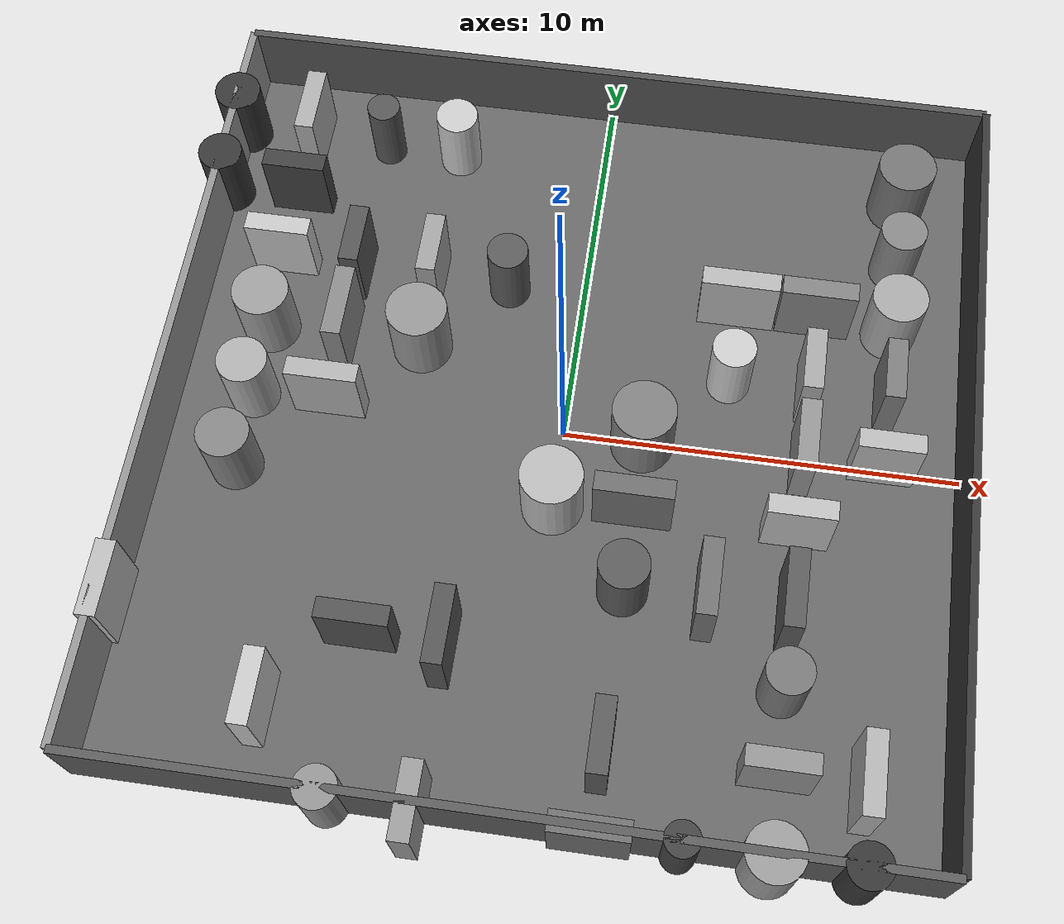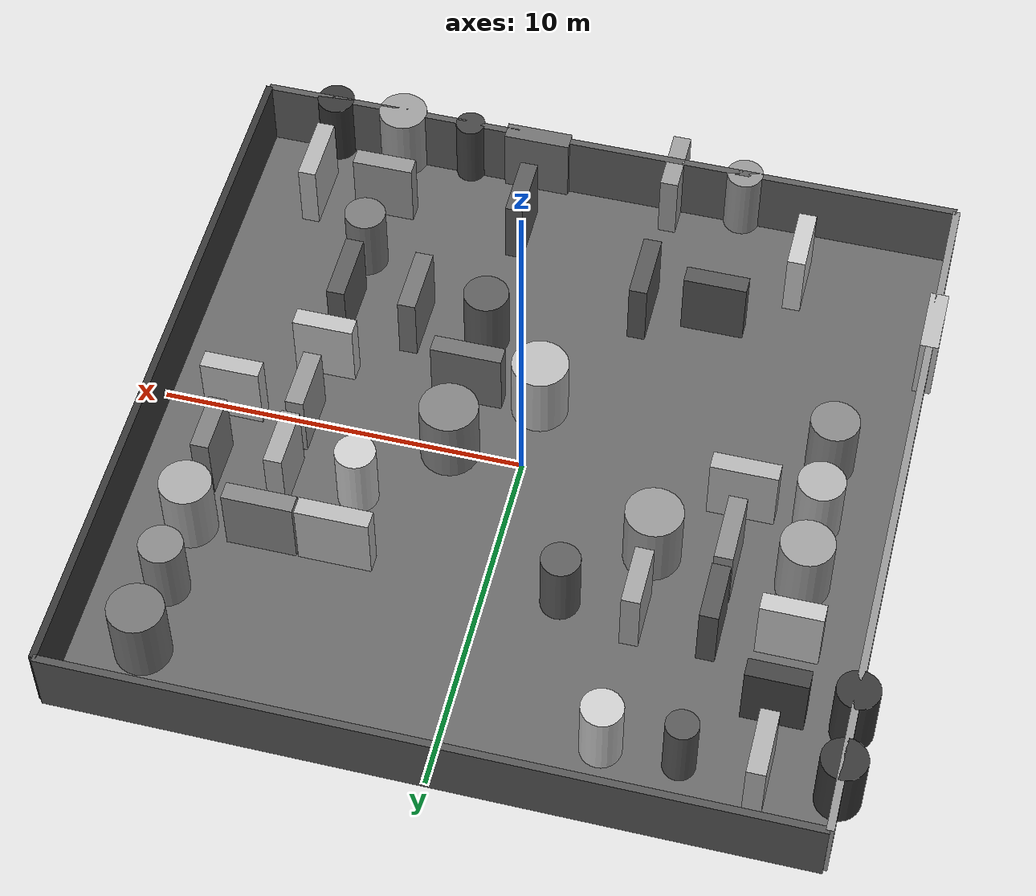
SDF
<sdf version="1.7">
  <world name="default">
    <plugin filename="gz-sim-physics-system" name="gz::sim::systems::Physics" />
    <plugin filename="gz-sim-user-commands-system" name="gz::sim::systems::UserCommands" />
    <plugin filename="gz-sim-scene-broadcaster-system" name="gz::sim::systems::SceneBroadcaster" />
    <plugin filename="gz-sim-sensors-system" name="gz::sim::systems::Sensors">
      <render_engine>ogre2</render_engine>
    </plugin>
    <plugin filename="gz-sim-imu-system" name="gz::sim::systems::Imu" />
    <plugin filename="gz-sim-contact-system" name="gz::sim::systems::Contact" />
    <light name="sun" type="directional">
      <cast_shadows>true</cast_shadows>
      <direction>-0.5 -0.5 -1</direction>
      <diffuse>1 1 1 1</diffuse>
      <specular>0.1 0.1 0.1 1</specular>
      <intensity>1.0</intensity>
    </light>
    <physics type="ode">
      <real_time_update_rate>1000.0</real_time_update_rate>
      <max_step_size>0.001</max_step_size>
      <real_time_factor>1</real_time_factor>
      <ode>
        <solver>
          <type>quick</type>
          <iters>150</iters>
          <precon_iters>0</precon_iters>
          <sor>1.4</sor>
          <use_dynamic_moi_rescaling>1</use_dynamic_moi_rescaling>
        </solver>
        <constraints>
          <cfm>0.00001</cfm>
          <erp>0.2</erp>
          <contact_max_correcting_vel>2000.0</contact_max_correcting_vel>
          <contact_surface_layer>0.01</contact_surface_layer>
        </constraints>
      </ode>
    </physics>
    <model name="ground_plane">
      <static>true</static>
      <link name="link">
        <pose>0.0 0.0 -0.05 0 0 0</pose>
        <visual name="visual">
          <material>
            <ambient>0.40502535502998405 0.40502535502998405 0.40502535502998405 1</ambient>
            <diffuse>0.40502535502998405 0.40502535502998405 0.40502535502998405 1</diffuse>
          </material>
          <geometry>
            <box>
              <size>20.0 20.0 0.1</size>
            </box>
          </geometry>
        </visual>
        <collision name="collision">
          <geometry>
            <box>
              <size>20.0 20.0 0.1</size>
            </box>
          </geometry>
          <surface>
            <friction>
              <ode>
                <mu>100</mu>
                <mu2>50.0</mu2>
                <slip1>0.0</slip1>
                <slip2>0.0</slip2>
              </ode>
            </friction>
            <bounce />
            <contact>
              <ode>
                <kp>10000.0</kp>
                <kd>100.0</kd>
              </ode>
            </contact>
          </surface>
        </collision>
      </link>
    </model>
    <model name="pn_wall_0">
      <static>true</static>
      <link name="link">
        <pose>-10.0 0.0 1.0 0 0 0</pose>
        <visual name="visual">
          <material>
            <ambient>0.5836560790747303 0.5836560790747303 0.5836560790747303 1</ambient>
            <diffuse>0.5836560790747303 0.5836560790747303 0.5836560790747303 1</diffuse>
          </material>
          <geometry>
            <box>
              <size>0.2 20.0 2.0</size>
            </box>
          </geometry>
        </visual>
        <collision name="collision">
          <geometry>
            <box>
              <size>0.2 20.0 2.0</size>
            </box>
          </geometry>
          <surface>
            <friction>
              <ode>
                <mu>100</mu>
                <mu2>50.0</mu2>
                <slip1>0.0</slip1>
                <slip2>0.0</slip2>
              </ode>
            </friction>
            <bounce />
            <contact>
              <ode>
                <kp>10000.0</kp>
                <kd>100.0</kd>
              </ode>
            </contact>
          </surface>
        </collision>
      </link>
    </model>
    <model name="pn_wall_1">
      <static>true</static>
      <link name="link">
        <pose>10.0 0.0 1.0 0 0 0</pose>
        <visual name="visual">
          <material>
            <ambient>0.21500645313360017 0.21500645313360017 0.21500645313360017 1</ambient>
            <diffuse>0.21500645313360017 0.21500645313360017 0.21500645313360017 1</diffuse>
          </material>
          <geometry>
            <box>
              <size>0.2 20.0 2.0</size>
            </box>
          </geometry>
        </visual>
        <collision name="collision">
          <geometry>
            <box>
              <size>0.2 20.0 2.0</size>
            </box>
          </geometry>
          <surface>
            <friction>
              <ode>
                <mu>100</mu>
                <mu2>50.0</mu2>
                <slip1>0.0</slip1>
                <slip2>0.0</slip2>
              </ode>
            </friction>
            <bounce />
            <contact>
              <ode>
                <kp>10000.0</kp>
                <kd>100.0</kd>
              </ode>
            </contact>
          </surface>
        </collision>
      </link>
    </model>
    <model name="pn_wall_2">
      <static>true</static>
      <link name="link">
        <pose>0.0 -10.0 1.0 0 0 0</pose>
        <visual name="visual">
          <material>
            <ambient>0.3650175910214716 0.3650175910214716 0.3650175910214716 1</ambient>
            <diffuse>0.3650175910214716 0.3650175910214716 0.3650175910214716 1</diffuse>
          </material>
          <geometry>
            <box>
              <size>20.0 0.2 2.0</size>
            </box>
          </geometry>
        </visual>
        <collision name="collision">
          <geometry>
            <box>
              <size>20.0 0.2 2.0</size>
            </box>
          </geometry>
          <surface>
            <friction>
              <ode>
                <mu>100</mu>
                <mu2>50.0</mu2>
                <slip1>0.0</slip1>
                <slip2>0.0</slip2>
              </ode>
            </friction>
            <bounce />
            <contact>
              <ode>
                <kp>10000.0</kp>
                <kd>100.0</kd>
              </ode>
            </contact>
          </surface>
        </collision>
      </link>
    </model>
    <model name="pn_wall_3">
      <static>true</static>
      <link name="link">
        <pose>0.0 10.0 1.0 0 0 0</pose>
        <visual name="visual">
          <material>
            <ambient>0.3339264428892937 0.3339264428892937 0.3339264428892937 1</ambient>
            <diffuse>0.3339264428892937 0.3339264428892937 0.3339264428892937 1</diffuse>
          </material>
          <geometry>
            <box>
              <size>20.0 0.2 2.0</size>
            </box>
          </geometry>
        </visual>
        <collision name="collision">
          <geometry>
            <box>
              <size>20.0 0.2 2.0</size>
            </box>
          </geometry>
          <surface>
            <friction>
              <ode>
                <mu>100</mu>
                <mu2>50.0</mu2>
                <slip1>0.0</slip1>
                <slip2>0.0</slip2>
              </ode>
            </friction>
            <bounce />
            <contact>
              <ode>
                <kp>10000.0</kp>
                <kd>100.0</kd>
              </ode>
            </contact>
          </surface>
        </collision>
      </link>
    </model>
    <model name="pn_wall_4">
      <static>true</static>
      <link name="link">
        <pose>-10.0 -6.0 1.0 0 0 0</pose>
        <visual name="visual">
          <material>
            <ambient>0.7353077406229074 0.7353077406229074 0.7353077406229074 1</ambient>
            <diffuse>0.7353077406229074 0.7353077406229074 0.7353077406229074 1</diffuse>
          </material>
          <geometry>
            <box>
              <size>0.5 1.8706797949691645 2.0</size>
            </box>
          </geometry>
        </visual>
        <collision name="collision">
          <geometry>
            <box>
              <size>0.5 1.8706797949691645 2.0</size>
            </box>
          </geometry>
          <surface>
            <friction>
              <ode>
                <mu>100</mu>
                <mu2>50.0</mu2>
                <slip1>0.0</slip1>
                <slip2>0.0</slip2>
              </ode>
            </friction>
            <bounce />
            <contact>
              <ode>
                <kp>10000.0</kp>
                <kd>100.0</kd>
              </ode>
            </contact>
          </surface>
        </collision>
      </link>
    </model>
    <model name="pn_pillar_5">
      <static>true</static>
      <link name="link">
        <pose>-10.0 6.0 1.0 0 0 0</pose>
        <visual name="visual">
          <material>
            <ambient>0.2178783316628422 0.2178783316628422 0.2178783316628422 1</ambient>
            <diffuse>0.2178783316628422 0.2178783316628422 0.2178783316628422 1</diffuse>
          </material>
          <geometry>
            <cylinder>
              <radius>0.5687687278741083</radius>
              <length>2.0</length>
            </cylinder>
          </geometry>
        </visual>
        <collision name="collision">
          <geometry>
            <cylinder>
              <radius>0.5687687278741083</radius>
              <length>2.0</length>
            </cylinder>
          </geometry>
          <surface>
            <friction>
              <ode>
                <mu>100</mu>
                <mu2>50.0</mu2>
                <slip1>0.0</slip1>
                <slip2>0.0</slip2>
              </ode>
            </friction>
            <bounce />
            <contact>
              <ode>
                <kp>10000.0</kp>
                <kd>100.0</kd>
              </ode>
            </contact>
          </surface>
        </collision>
      </link>
    </model>
    <model name="pn_pillar_6">
      <static>true</static>
      <link name="link">
        <pose>-10.0 8.0 1.0 0 0 0</pose>
        <visual name="visual">
          <material>
            <ambient>0.21592158181031817 0.21592158181031817 0.21592158181031817 1</ambient>
            <diffuse>0.21592158181031817 0.21592158181031817 0.21592158181031817 1</diffuse>
          </material>
          <geometry>
            <cylinder>
              <radius>0.602142115241345</radius>
              <length>2.0</length>
            </cylinder>
          </geometry>
        </visual>
        <collision name="collision">
          <geometry>
            <cylinder>
              <radius>0.602142115241345</radius>
              <length>2.0</length>
            </cylinder>
          </geometry>
          <surface>
            <friction>
              <ode>
                <mu>100</mu>
                <mu2>50.0</mu2>
                <slip1>0.0</slip1>
                <slip2>0.0</slip2>
              </ode>
            </friction>
            <bounce />
            <contact>
              <ode>
                <kp>10000.0</kp>
                <kd>100.0</kd>
              </ode>
            </contact>
          </surface>
        </collision>
      </link>
    </model>
    <model name="pn_pillar_7">
      <static>true</static>
      <link name="link">
        <pose>-8.0 -2.0 1.0 0 0 0</pose>
        <visual name="visual">
          <material>
            <ambient>0.52696488836193 0.52696488836193 0.52696488836193 1</ambient>
            <diffuse>0.52696488836193 0.52696488836193 0.52696488836193 1</diffuse>
          </material>
          <geometry>
            <cylinder>
              <radius>0.6599537751118093</radius>
              <length>2.0</length>
            </cylinder>
          </geometry>
        </visual>
        <collision name="collision">
          <geometry>
            <cylinder>
              <radius>0.6599537751118093</radius>
              <length>2.0</length>
            </cylinder>
          </geometry>
          <surface>
            <friction>
              <ode>
                <mu>100</mu>
                <mu2>50.0</mu2>
                <slip1>0.0</slip1>
                <slip2>0.0</slip2>
              </ode>
            </friction>
            <bounce />
            <contact>
              <ode>
                <kp>10000.0</kp>
                <kd>100.0</kd>
              </ode>
            </contact>
          </surface>
        </collision>
      </link>
    </model>
    <model name="pn_pillar_8">
      <static>true</static>
      <link name="link">
        <pose>-8.0 0.0 1.0 0 0 0</pose>
        <visual name="visual">
          <material>
            <ambient>0.6856582740066961 0.6856582740066961 0.6856582740066961 1</ambient>
            <diffuse>0.6856582740066961 0.6856582740066961 0.6856582740066961 1</diffuse>
          </material>
          <geometry>
            <cylinder>
              <radius>0.6357062735503636</radius>
              <length>2.0</length>
            </cylinder>
          </geometry>
        </visual>
        <collision name="collision">
          <geometry>
            <cylinder>
              <radius>0.6357062735503636</radius>
              <length>2.0</length>
            </cylinder>
          </geometry>
          <surface>
            <friction>
              <ode>
                <mu>100</mu>
                <mu2>50.0</mu2>
                <slip1>0.0</slip1>
                <slip2>0.0</slip2>
              </ode>
            </friction>
            <bounce />
            <contact>
              <ode>
                <kp>10000.0</kp>
                <kd>100.0</kd>
              </ode>
            </contact>
          </surface>
        </collision>
      </link>
    </model>
    <model name="pn_pillar_9">
      <static>true</static>
      <link name="link">
        <pose>-8.0 2.0 1.0 0 0 0</pose>
        <visual name="visual">
          <material>
            <ambient>0.6188836369929362 0.6188836369929362 0.6188836369929362 1</ambient>
            <diffuse>0.6188836369929362 0.6188836369929362 0.6188836369929362 1</diffuse>
          </material>
          <geometry>
            <cylinder>
              <radius>0.7223277007331232</radius>
              <length>2.0</length>
            </cylinder>
          </geometry>
        </visual>
        <collision name="collision">
          <geometry>
            <cylinder>
              <radius>0.7223277007331232</radius>
              <length>2.0</length>
            </cylinder>
          </geometry>
          <surface>
            <friction>
              <ode>
                <mu>100</mu>
                <mu2>50.0</mu2>
                <slip1>0.0</slip1>
                <slip2>0.0</slip2>
              </ode>
            </friction>
            <bounce />
            <contact>
              <ode>
                <kp>10000.0</kp>
                <kd>100.0</kd>
              </ode>
            </contact>
          </surface>
        </collision>
      </link>
    </model>
    <model name="pn_wall_10">
      <static>true</static>
      <link name="link">
        <pose>-8.0 4.0 1.0 0 0 0</pose>
        <visual name="visual">
          <material>
            <ambient>0.7743278433240688 0.7743278433240688 0.7743278433240688 1</ambient>
            <diffuse>0.7743278433240688 0.7743278433240688 0.7743278433240688 1</diffuse>
          </material>
          <geometry>
            <box>
              <size>1.6621917999247127 0.5 2.0</size>
            </box>
          </geometry>
        </visual>
        <collision name="collision">
          <geometry>
            <box>
              <size>1.6621917999247127 0.5 2.0</size>
            </box>
          </geometry>
          <surface>
            <friction>
              <ode>
                <mu>100</mu>
                <mu2>50.0</mu2>
                <slip1>0.0</slip1>
                <slip2>0.0</slip2>
              </ode>
            </friction>
            <bounce />
            <contact>
              <ode>
                <kp>10000.0</kp>
                <kd>100.0</kd>
              </ode>
            </contact>
          </surface>
        </collision>
      </link>
    </model>
    <model name="pn_wall_11">
      <static>true</static>
      <link name="link">
        <pose>-8.0 6.0 1.0 0 0 0</pose>
        <visual name="visual">
          <material>
            <ambient>0.2580298261000784 0.2580298261000784 0.2580298261000784 1</ambient>
            <diffuse>0.2580298261000784 0.2580298261000784 0.2580298261000784 1</diffuse>
          </material>
          <geometry>
            <box>
              <size>1.6370983373520593 0.5 2.0</size>
            </box>
          </geometry>
        </visual>
        <collision name="collision">
          <geometry>
            <box>
              <size>1.6370983373520593 0.5 2.0</size>
            </box>
          </geometry>
          <surface>
            <friction>
              <ode>
                <mu>100</mu>
                <mu2>50.0</mu2>
                <slip1>0.0</slip1>
                <slip2>0.0</slip2>
              </ode>
            </friction>
            <bounce />
            <contact>
              <ode>
                <kp>10000.0</kp>
                <kd>100.0</kd>
              </ode>
            </contact>
          </surface>
        </collision>
      </link>
    </model>
    <model name="pn_wall_12">
      <static>true</static>
      <link name="link">
        <pose>-8.0 8.0 1.0 0 0 0</pose>
        <visual name="visual">
          <material>
            <ambient>0.6842769639646282 0.6842769639646282 0.6842769639646282 1</ambient>
            <diffuse>0.6842769639646282 0.6842769639646282 0.6842769639646282 1</diffuse>
          </material>
          <geometry>
            <box>
              <size>0.5 1.8414904125467564 2.0</size>
            </box>
          </geometry>
        </visual>
        <collision name="collision">
          <geometry>
            <box>
              <size>0.5 1.8414904125467564 2.0</size>
            </box>
          </geometry>
          <surface>
            <friction>
              <ode>
                <mu>100</mu>
                <mu2>50.0</mu2>
                <slip1>0.0</slip1>
                <slip2>0.0</slip2>
              </ode>
            </friction>
            <bounce />
            <contact>
              <ode>
                <kp>10000.0</kp>
                <kd>100.0</kd>
              </ode>
            </contact>
          </surface>
        </collision>
      </link>
    </model>
    <model name="pn_wall_13">
      <static>true</static>
      <link name="link">
        <pose>-6.0 -8.0 1.0 0 0 0</pose>
        <visual name="visual">
          <material>
            <ambient>0.7838694583876225 0.7838694583876225 0.7838694583876225 1</ambient>
            <diffuse>0.7838694583876225 0.7838694583876225 0.7838694583876225 1</diffuse>
          </material>
          <geometry>
            <box>
              <size>0.5 1.8144912365818804 2.0</size>
            </box>
          </geometry>
        </visual>
        <collision name="collision">
          <geometry>
            <box>
              <size>0.5 1.8144912365818804 2.0</size>
            </box>
          </geometry>
          <surface>
            <friction>
              <ode>
                <mu>100</mu>
                <mu2>50.0</mu2>
                <slip1>0.0</slip1>
                <slip2>0.0</slip2>
              </ode>
            </friction>
            <bounce />
            <contact>
              <ode>
                <kp>10000.0</kp>
                <kd>100.0</kd>
              </ode>
            </contact>
          </surface>
        </collision>
      </link>
    </model>
    <model name="pn_wall_14">
      <static>true</static>
      <link name="link">
        <pose>-6.0 0.0 1.0 0 0 0</pose>
        <visual name="visual">
          <material>
            <ambient>0.697642798551797 0.697642798551797 0.697642798551797 1</ambient>
            <diffuse>0.697642798551797 0.697642798551797 0.697642798551797 1</diffuse>
          </material>
          <geometry>
            <box>
              <size>1.8208162525092908 0.5 2.0</size>
            </box>
          </geometry>
        </visual>
        <collision name="collision">
          <geometry>
            <box>
              <size>1.8208162525092908 0.5 2.0</size>
            </box>
          </geometry>
          <surface>
            <friction>
              <ode>
                <mu>100</mu>
                <mu2>50.0</mu2>
                <slip1>0.0</slip1>
                <slip2>0.0</slip2>
              </ode>
            </friction>
            <bounce />
            <contact>
              <ode>
                <kp>10000.0</kp>
                <kd>100.0</kd>
              </ode>
            </contact>
          </surface>
        </collision>
      </link>
    </model>
    <model name="pn_wall_15">
      <static>true</static>
      <link name="link">
        <pose>-6.0 2.0 1.0 0 0 0</pose>
        <visual name="visual">
          <material>
            <ambient>0.5464112871540573 0.5464112871540573 0.5464112871540573 1</ambient>
            <diffuse>0.5464112871540573 0.5464112871540573 0.5464112871540573 1</diffuse>
          </material>
          <geometry>
            <box>
              <size>0.5 1.9446827601243108 2.0</size>
            </box>
          </geometry>
        </visual>
        <collision name="collision">
          <geometry>
            <box>
              <size>0.5 1.9446827601243108 2.0</size>
            </box>
          </geometry>
          <surface>
            <friction>
              <ode>
                <mu>100</mu>
                <mu2>50.0</mu2>
                <slip1>0.0</slip1>
                <slip2>0.0</slip2>
              </ode>
            </friction>
            <bounce />
            <contact>
              <ode>
                <kp>10000.0</kp>
                <kd>100.0</kd>
              </ode>
            </contact>
          </surface>
        </collision>
      </link>
    </model>
    <model name="pn_wall_16">
      <static>true</static>
      <link name="link">
        <pose>-6.0 4.0 1.0 0 0 0</pose>
        <visual name="visual">
          <material>
            <ambient>0.3367389653909282 0.3367389653909282 0.3367389653909282 1</ambient>
            <diffuse>0.3367389653909282 0.3367389653909282 0.3367389653909282 1</diffuse>
          </material>
          <geometry>
            <box>
              <size>0.5 1.618329753462265 2.0</size>
            </box>
          </geometry>
        </visual>
        <collision name="collision">
          <geometry>
            <box>
              <size>0.5 1.618329753462265 2.0</size>
            </box>
          </geometry>
          <surface>
            <friction>
              <ode>
                <mu>100</mu>
                <mu2>50.0</mu2>
                <slip1>0.0</slip1>
                <slip2>0.0</slip2>
              </ode>
            </friction>
            <bounce />
            <contact>
              <ode>
                <kp>10000.0</kp>
                <kd>100.0</kd>
              </ode>
            </contact>
          </surface>
        </collision>
      </link>
    </model>
    <model name="pn_pillar_17">
      <static>true</static>
      <link name="link">
        <pose>-6.0 8.0 1.0 0 0 0</pose>
        <visual name="visual">
          <material>
            <ambient>0.3396745318166181 0.3396745318166181 0.3396745318166181 1</ambient>
            <diffuse>0.3396745318166181 0.3396745318166181 0.3396745318166181 1</diffuse>
          </material>
          <geometry>
            <cylinder>
              <radius>0.431916790769451</radius>
              <length>2.0</length>
            </cylinder>
          </geometry>
        </visual>
        <collision name="collision">
          <geometry>
            <cylinder>
              <radius>0.431916790769451</radius>
              <length>2.0</length>
            </cylinder>
          </geometry>
          <surface>
            <friction>
              <ode>
                <mu>100</mu>
                <mu2>50.0</mu2>
                <slip1>0.0</slip1>
                <slip2>0.0</slip2>
              </ode>
            </friction>
            <bounce />
            <contact>
              <ode>
                <kp>10000.0</kp>
                <kd>100.0</kd>
              </ode>
            </contact>
          </surface>
        </collision>
      </link>
    </model>
    <model name="pn_pillar_18">
      <static>true</static>
      <link name="link">
        <pose>-4.0 -10.0 1.0 0 0 0</pose>
        <visual name="visual">
          <material>
            <ambient>0.5814106665586402 0.5814106665586402 0.5814106665586402 1</ambient>
            <diffuse>0.5814106665586402 0.5814106665586402 0.5814106665586402 1</diffuse>
          </material>
          <geometry>
            <cylinder>
              <radius>0.5111894412440369</radius>
              <length>2.0</length>
            </cylinder>
          </geometry>
        </visual>
        <collision name="collision">
          <geometry>
            <cylinder>
              <radius>0.5111894412440369</radius>
              <length>2.0</length>
            </cylinder>
          </geometry>
          <surface>
            <friction>
              <ode>
                <mu>100</mu>
                <mu2>50.0</mu2>
                <slip1>0.0</slip1>
                <slip2>0.0</slip2>
              </ode>
            </friction>
            <bounce />
            <contact>
              <ode>
                <kp>10000.0</kp>
                <kd>100.0</kd>
              </ode>
            </contact>
          </surface>
        </collision>
      </link>
    </model>
    <model name="pn_wall_19">
      <static>true</static>
      <link name="link">
        <pose>-4.0 -6.0 1.0 0 0 0</pose>
        <visual name="visual">
          <material>
            <ambient>0.32570421846289266 0.32570421846289266 0.32570421846289266 1</ambient>
            <diffuse>0.32570421846289266 0.32570421846289266 0.32570421846289266 1</diffuse>
          </material>
          <geometry>
            <box>
              <size>1.7480723868467531 0.5 2.0</size>
            </box>
          </geometry>
        </visual>
        <collision name="collision">
          <geometry>
            <box>
              <size>1.7480723868467531 0.5 2.0</size>
            </box>
          </geometry>
          <surface>
            <friction>
              <ode>
                <mu>100</mu>
                <mu2>50.0</mu2>
                <slip1>0.0</slip1>
                <slip2>0.0</slip2>
              </ode>
            </friction>
            <bounce />
            <contact>
              <ode>
                <kp>10000.0</kp>
                <kd>100.0</kd>
              </ode>
            </contact>
          </surface>
        </collision>
      </link>
    </model>
    <model name="pn_pillar_20">
      <static>true</static>
      <link name="link">
        <pose>-4.0 2.0 1.0 0 0 0</pose>
        <visual name="visual">
          <material>
            <ambient>0.5888212311479561 0.5888212311479561 0.5888212311479561 1</ambient>
            <diffuse>0.5888212311479561 0.5888212311479561 0.5888212311479561 1</diffuse>
          </material>
          <geometry>
            <cylinder>
              <radius>0.7746618350849976</radius>
              <length>2.0</length>
            </cylinder>
          </geometry>
        </visual>
        <collision name="collision">
          <geometry>
            <cylinder>
              <radius>0.7746618350849976</radius>
              <length>2.0</length>
            </cylinder>
          </geometry>
          <surface>
            <friction>
              <ode>
                <mu>100</mu>
                <mu2>50.0</mu2>
                <slip1>0.0</slip1>
                <slip2>0.0</slip2>
              </ode>
            </friction>
            <bounce />
            <contact>
              <ode>
                <kp>10000.0</kp>
                <kd>100.0</kd>
              </ode>
            </contact>
          </surface>
        </collision>
      </link>
    </model>
    <model name="pn_wall_21">
      <static>true</static>
      <link name="link">
        <pose>-4.0 4.0 1.0 0 0 0</pose>
        <visual name="visual">
          <material>
            <ambient>0.6374760787702096 0.6374760787702096 0.6374760787702096 1</ambient>
            <diffuse>0.6374760787702096 0.6374760787702096 0.6374760787702096 1</diffuse>
          </material>
          <geometry>
            <box>
              <size>0.5 1.6684554592792389 2.0</size>
            </box>
          </geometry>
        </visual>
        <collision name="collision">
          <geometry>
            <box>
              <size>0.5 1.6684554592792389 2.0</size>
            </box>
          </geometry>
          <surface>
            <friction>
              <ode>
                <mu>100</mu>
                <mu2>50.0</mu2>
                <slip1>0.0</slip1>
                <slip2>0.0</slip2>
              </ode>
            </friction>
            <bounce />
            <contact>
              <ode>
                <kp>10000.0</kp>
                <kd>100.0</kd>
              </ode>
            </contact>
          </surface>
        </collision>
      </link>
    </model>
    <model name="pn_pillar_22">
      <static>true</static>
      <link name="link">
        <pose>-4.0 8.0 1.0 0 0 0</pose>
        <visual name="visual">
          <material>
            <ambient>0.7937140103819573 0.7937140103819573 0.7937140103819573 1</ambient>
            <diffuse>0.7937140103819573 0.7937140103819573 0.7937140103819573 1</diffuse>
          </material>
          <geometry>
            <cylinder>
              <radius>0.5517821767030592</radius>
              <length>2.0</length>
            </cylinder>
          </geometry>
        </visual>
        <collision name="collision">
          <geometry>
            <cylinder>
              <radius>0.5517821767030592</radius>
              <length>2.0</length>
            </cylinder>
          </geometry>
          <surface>
            <friction>
              <ode>
                <mu>100</mu>
                <mu2>50.0</mu2>
                <slip1>0.0</slip1>
                <slip2>0.0</slip2>
              </ode>
            </friction>
            <bounce />
            <contact>
              <ode>
                <kp>10000.0</kp>
                <kd>100.0</kd>
              </ode>
            </contact>
          </surface>
        </collision>
      </link>
    </model>
    <model name="pn_wall_23">
      <static>true</static>
      <link name="link">
        <pose>-2.0 -10.0 1.0 0 0 0</pose>
        <visual name="visual">
          <material>
            <ambient>0.6107685505939249 0.6107685505939249 0.6107685505939249 1</ambient>
            <diffuse>0.6107685505939249 0.6107685505939249 0.6107685505939249 1</diffuse>
          </material>
          <geometry>
            <box>
              <size>0.5 1.8227798975098586 2.0</size>
            </box>
          </geometry>
        </visual>
        <collision name="collision">
          <geometry>
            <box>
              <size>0.5 1.8227798975098586 2.0</size>
            </box>
          </geometry>
          <surface>
            <friction>
              <ode>
                <mu>100</mu>
                <mu2>50.0</mu2>
                <slip1>0.0</slip1>
                <slip2>0.0</slip2>
              </ode>
            </friction>
            <bounce />
            <contact>
              <ode>
                <kp>10000.0</kp>
                <kd>100.0</kd>
              </ode>
            </contact>
          </surface>
        </collision>
      </link>
    </model>
    <model name="pn_wall_24">
      <static>true</static>
      <link name="link">
        <pose>-2.0 -6.0 1.0 0 0 0</pose>
        <visual name="visual">
          <material>
            <ambient>0.33742884317846267 0.33742884317846267 0.33742884317846267 1</ambient>
            <diffuse>0.33742884317846267 0.33742884317846267 0.33742884317846267 1</diffuse>
          </material>
          <geometry>
            <box>
              <size>0.5 1.910399964618498 2.0</size>
            </box>
          </geometry>
        </visual>
        <collision name="collision">
          <geometry>
            <box>
              <size>0.5 1.910399964618498 2.0</size>
            </box>
          </geometry>
          <surface>
            <friction>
              <ode>
                <mu>100</mu>
                <mu2>50.0</mu2>
                <slip1>0.0</slip1>
                <slip2>0.0</slip2>
              </ode>
            </friction>
            <bounce />
            <contact>
              <ode>
                <kp>10000.0</kp>
                <kd>100.0</kd>
              </ode>
            </contact>
          </surface>
        </collision>
      </link>
    </model>
    <model name="pn_pillar_25">
      <static>true</static>
      <link name="link">
        <pose>-2.0 4.0 1.0 0 0 0</pose>
        <visual name="visual">
          <material>
            <ambient>0.3606445255854217 0.3606445255854217 0.3606445255854217 1</ambient>
            <diffuse>0.3606445255854217 0.3606445255854217 0.3606445255854217 1</diffuse>
          </material>
          <geometry>
            <cylinder>
              <radius>0.5261812192236328</radius>
              <length>2.0</length>
            </cylinder>
          </geometry>
        </visual>
        <collision name="collision">
          <geometry>
            <cylinder>
              <radius>0.5261812192236328</radius>
              <length>2.0</length>
            </cylinder>
          </geometry>
          <surface>
            <friction>
              <ode>
                <mu>100</mu>
                <mu2>50.0</mu2>
                <slip1>0.0</slip1>
                <slip2>0.0</slip2>
              </ode>
            </friction>
            <bounce />
            <contact>
              <ode>
                <kp>10000.0</kp>
                <kd>100.0</kd>
              </ode>
            </contact>
          </surface>
        </collision>
      </link>
    </model>
    <model name="pn_pillar_26">
      <static>true</static>
      <link name="link">
        <pose>0.0 -2.0 1.0 0 0 0</pose>
        <visual name="visual">
          <material>
            <ambient>0.7258205758836014 0.7258205758836014 0.7258205758836014 1</ambient>
            <diffuse>0.7258205758836014 0.7258205758836014 0.7258205758836014 1</diffuse>
          </material>
          <geometry>
            <cylinder>
              <radius>0.7771638857340218</radius>
              <length>2.0</length>
            </cylinder>
          </geometry>
        </visual>
        <collision name="collision">
          <geometry>
            <cylinder>
              <radius>0.7771638857340218</radius>
              <length>2.0</length>
            </cylinder>
          </geometry>
          <surface>
            <friction>
              <ode>
                <mu>100</mu>
                <mu2>50.0</mu2>
                <slip1>0.0</slip1>
                <slip2>0.0</slip2>
              </ode>
            </friction>
            <bounce />
            <contact>
              <ode>
                <kp>10000.0</kp>
                <kd>100.0</kd>
              </ode>
            </contact>
          </surface>
        </collision>
      </link>
    </model>
    <model name="pn_wall_27">
      <static>true</static>
      <link name="link">
        <pose>2.0 -10.0 1.0 0 0 0</pose>
        <visual name="visual">
          <material>
            <ambient>0.4373791406363986 0.4373791406363986 0.4373791406363986 1</ambient>
            <diffuse>0.4373791406363986 0.4373791406363986 0.4373791406363986 1</diffuse>
          </material>
          <geometry>
            <box>
              <size>1.862175466117952 0.5 2.0</size>
            </box>
          </geometry>
        </visual>
        <collision name="collision">
          <geometry>
            <box>
              <size>1.862175466117952 0.5 2.0</size>
            </box>
          </geometry>
          <surface>
            <friction>
              <ode>
                <mu>100</mu>
                <mu2>50.0</mu2>
                <slip1>0.0</slip1>
                <slip2>0.0</slip2>
              </ode>
            </friction>
            <bounce />
            <contact>
              <ode>
                <kp>10000.0</kp>
                <kd>100.0</kd>
              </ode>
            </contact>
          </surface>
        </collision>
      </link>
    </model>
    <model name="pn_wall_28">
      <static>true</static>
      <link name="link">
        <pose>2.0 -8.0 1.0 0 0 0</pose>
        <visual name="visual">
          <material>
            <ambient>0.3589280998988315 0.3589280998988315 0.3589280998988315 1</ambient>
            <diffuse>0.3589280998988315 0.3589280998988315 0.3589280998988315 1</diffuse>
          </material>
          <geometry>
            <box>
              <size>0.5 1.7835407410349595 2.0</size>
            </box>
          </geometry>
        </visual>
        <collision name="collision">
          <geometry>
            <box>
              <size>0.5 1.7835407410349595 2.0</size>
            </box>
          </geometry>
          <surface>
            <friction>
              <ode>
                <mu>100</mu>
                <mu2>50.0</mu2>
                <slip1>0.0</slip1>
                <slip2>0.0</slip2>
              </ode>
            </friction>
            <bounce />
            <contact>
              <ode>
                <kp>10000.0</kp>
                <kd>100.0</kd>
              </ode>
            </contact>
          </surface>
        </collision>
      </link>
    </model>
    <model name="pn_pillar_29">
      <static>true</static>
      <link name="link">
        <pose>2.0 -4.0 1.0 0 0 0</pose>
        <visual name="visual">
          <material>
            <ambient>0.3576449651137612 0.3576449651137612 0.3576449651137612 1</ambient>
            <diffuse>0.3576449651137612 0.3576449651137612 0.3576449651137612 1</diffuse>
          </material>
          <geometry>
            <cylinder>
              <radius>0.6245472536652603</radius>
              <length>2.0</length>
            </cylinder>
          </geometry>
        </visual>
        <collision name="collision">
          <geometry>
            <cylinder>
              <radius>0.6245472536652603</radius>
              <length>2.0</length>
            </cylinder>
          </geometry>
          <surface>
            <friction>
              <ode>
                <mu>100</mu>
                <mu2>50.0</mu2>
                <slip1>0.0</slip1>
                <slip2>0.0</slip2>
              </ode>
            </friction>
            <bounce />
            <contact>
              <ode>
                <kp>10000.0</kp>
                <kd>100.0</kd>
              </ode>
            </contact>
          </surface>
        </collision>
      </link>
    </model>
    <model name="pn_wall_30">
      <static>true</static>
      <link name="link">
        <pose>2.0 -2.0 1.0 0 0 0</pose>
        <visual name="visual">
          <material>
            <ambient>0.4396403030842384 0.4396403030842384 0.4396403030842384 1</ambient>
            <diffuse>0.4396403030842384 0.4396403030842384 0.4396403030842384 1</diffuse>
          </material>
          <geometry>
            <box>
              <size>1.959129153440991 0.5 2.0</size>
            </box>
          </geometry>
        </visual>
        <collision name="collision">
          <geometry>
            <box>
              <size>1.959129153440991 0.5 2.0</size>
            </box>
          </geometry>
          <surface>
            <friction>
              <ode>
                <mu>100</mu>
                <mu2>50.0</mu2>
                <slip1>0.0</slip1>
                <slip2>0.0</slip2>
              </ode>
            </friction>
            <bounce />
            <contact>
              <ode>
                <kp>10000.0</kp>
                <kd>100.0</kd>
              </ode>
            </contact>
          </surface>
        </collision>
      </link>
    </model>
    <model name="pn_pillar_31">
      <static>true</static>
      <link name="link">
        <pose>2.0 0.0 1.0 0 0 0</pose>
        <visual name="visual">
          <material>
            <ambient>0.5057157762058788 0.5057157762058788 0.5057157762058788 1</ambient>
            <diffuse>0.5057157762058788 0.5057157762058788 0.5057157762058788 1</diffuse>
          </material>
          <geometry>
            <cylinder>
              <radius>0.7990150425980441</radius>
              <length>2.0</length>
            </cylinder>
          </geometry>
        </visual>
        <collision name="collision">
          <geometry>
            <cylinder>
              <radius>0.7990150425980441</radius>
              <length>2.0</length>
            </cylinder>
          </geometry>
          <surface>
            <friction>
              <ode>
                <mu>100</mu>
                <mu2>50.0</mu2>
                <slip1>0.0</slip1>
                <slip2>0.0</slip2>
              </ode>
            </friction>
            <bounce />
            <contact>
              <ode>
                <kp>10000.0</kp>
                <kd>100.0</kd>
              </ode>
            </contact>
          </surface>
        </collision>
      </link>
    </model>
    <model name="pn_pillar_32">
      <static>true</static>
      <link name="link">
        <pose>4.0 -10.0 1.0 0 0 0</pose>
        <visual name="visual">
          <material>
            <ambient>0.2657894782103955 0.2657894782103955 0.2657894782103955 1</ambient>
            <diffuse>0.2657894782103955 0.2657894782103955 0.2657894782103955 1</diffuse>
          </material>
          <geometry>
            <cylinder>
              <radius>0.41884655016989386</radius>
              <length>2.0</length>
            </cylinder>
          </geometry>
        </visual>
        <collision name="collision">
          <geometry>
            <cylinder>
              <radius>0.41884655016989386</radius>
              <length>2.0</length>
            </cylinder>
          </geometry>
          <surface>
            <friction>
              <ode>
                <mu>100</mu>
                <mu2>50.0</mu2>
                <slip1>0.0</slip1>
                <slip2>0.0</slip2>
              </ode>
            </friction>
            <bounce />
            <contact>
              <ode>
                <kp>10000.0</kp>
                <kd>100.0</kd>
              </ode>
            </contact>
          </surface>
        </collision>
      </link>
    </model>
    <model name="pn_wall_33">
      <static>true</static>
      <link name="link">
        <pose>4.0 -4.0 1.0 0 0 0</pose>
        <visual name="visual">
          <material>
            <ambient>0.4532959800798105 0.4532959800798105 0.4532959800798105 1</ambient>
            <diffuse>0.4532959800798105 0.4532959800798105 0.4532959800798105 1</diffuse>
          </material>
          <geometry>
            <box>
              <size>0.5 1.9168317457451858 2.0</size>
            </box>
          </geometry>
        </visual>
        <collision name="collision">
          <geometry>
            <box>
              <size>0.5 1.9168317457451858 2.0</size>
            </box>
          </geometry>
          <surface>
            <friction>
              <ode>
                <mu>100</mu>
                <mu2>50.0</mu2>
                <slip1>0.0</slip1>
                <slip2>0.0</slip2>
              </ode>
            </friction>
            <bounce />
            <contact>
              <ode>
                <kp>10000.0</kp>
                <kd>100.0</kd>
              </ode>
            </contact>
          </surface>
        </collision>
      </link>
    </model>
    <model name="pn_pillar_34">
      <static>true</static>
      <link name="link">
        <pose>4.0 2.0 1.0 0 0 0</pose>
        <visual name="visual">
          <material>
            <ambient>0.7976728281440582 0.7976728281440582 0.7976728281440582 1</ambient>
            <diffuse>0.7976728281440582 0.7976728281440582 0.7976728281440582 1</diffuse>
          </material>
          <geometry>
            <cylinder>
              <radius>0.5526477146026147</radius>
              <length>2.0</length>
            </cylinder>
          </geometry>
        </visual>
        <collision name="collision">
          <geometry>
            <cylinder>
              <radius>0.5526477146026147</radius>
              <length>2.0</length>
            </cylinder>
          </geometry>
          <surface>
            <friction>
              <ode>
                <mu>100</mu>
                <mu2>50.0</mu2>
                <slip1>0.0</slip1>
                <slip2>0.0</slip2>
              </ode>
            </friction>
            <bounce />
            <contact>
              <ode>
                <kp>10000.0</kp>
                <kd>100.0</kd>
              </ode>
            </contact>
          </surface>
        </collision>
      </link>
    </model>
    <model name="pn_wall_35">
      <static>true</static>
      <link name="link">
        <pose>4.0 4.0 1.0 0 0 0</pose>
        <visual name="visual">
          <material>
            <ambient>0.716467821340699 0.716467821340699 0.716467821340699 1</ambient>
            <diffuse>0.716467821340699 0.716467821340699 0.716467821340699 1</diffuse>
          </material>
          <geometry>
            <box>
              <size>1.9884313510454472 0.5 2.0</size>
            </box>
          </geometry>
        </visual>
        <collision name="collision">
          <geometry>
            <box>
              <size>1.9884313510454472 0.5 2.0</size>
            </box>
          </geometry>
          <surface>
            <friction>
              <ode>
                <mu>100</mu>
                <mu2>50.0</mu2>
                <slip1>0.0</slip1>
                <slip2>0.0</slip2>
              </ode>
            </friction>
            <bounce />
            <contact>
              <ode>
                <kp>10000.0</kp>
                <kd>100.0</kd>
              </ode>
            </contact>
          </surface>
        </collision>
      </link>
    </model>
    <model name="pn_pillar_36">
      <static>true</static>
      <link name="link">
        <pose>6.0 -10.0 1.0 0 0 0</pose>
        <visual name="visual">
          <material>
            <ambient>0.609026221415945 0.609026221415945 0.609026221415945 1</ambient>
            <diffuse>0.609026221415945 0.609026221415945 0.609026221415945 1</diffuse>
          </material>
          <geometry>
            <cylinder>
              <radius>0.6882887277440779</radius>
              <length>2.0</length>
            </cylinder>
          </geometry>
        </visual>
        <collision name="collision">
          <geometry>
            <cylinder>
              <radius>0.6882887277440779</radius>
              <length>2.0</length>
            </cylinder>
          </geometry>
          <surface>
            <friction>
              <ode>
                <mu>100</mu>
                <mu2>50.0</mu2>
                <slip1>0.0</slip1>
                <slip2>0.0</slip2>
              </ode>
            </friction>
            <bounce />
            <contact>
              <ode>
                <kp>10000.0</kp>
                <kd>100.0</kd>
              </ode>
            </contact>
          </surface>
        </collision>
      </link>
    </model>
    <model name="pn_wall_37">
      <static>true</static>
      <link name="link">
        <pose>6.0 -8.0 1.0 0 0 0</pose>
        <visual name="visual">
          <material>
            <ambient>0.5845770791478849 0.5845770791478849 0.5845770791478849 1</ambient>
            <diffuse>0.5845770791478849 0.5845770791478849 0.5845770791478849 1</diffuse>
          </material>
          <geometry>
            <box>
              <size>1.7067300759810171 0.5 2.0</size>
            </box>
          </geometry>
        </visual>
        <collision name="collision">
          <geometry>
            <box>
              <size>1.7067300759810171 0.5 2.0</size>
            </box>
          </geometry>
          <surface>
            <friction>
              <ode>
                <mu>100</mu>
                <mu2>50.0</mu2>
                <slip1>0.0</slip1>
                <slip2>0.0</slip2>
              </ode>
            </friction>
            <bounce />
            <contact>
              <ode>
                <kp>10000.0</kp>
                <kd>100.0</kd>
              </ode>
            </contact>
          </surface>
        </collision>
      </link>
    </model>
    <model name="pn_pillar_38">
      <static>true</static>
      <link name="link">
        <pose>6.0 -6.0 1.0 0 0 0</pose>
        <visual name="visual">
          <material>
            <ambient>0.47223422379752394 0.47223422379752394 0.47223422379752394 1</ambient>
            <diffuse>0.47223422379752394 0.47223422379752394 0.47223422379752394 1</diffuse>
          </material>
          <geometry>
            <cylinder>
              <radius>0.573906100267642</radius>
              <length>2.0</length>
            </cylinder>
          </geometry>
        </visual>
        <collision name="collision">
          <geometry>
            <cylinder>
              <radius>0.573906100267642</radius>
              <length>2.0</length>
            </cylinder>
          </geometry>
          <surface>
            <friction>
              <ode>
                <mu>100</mu>
                <mu2>50.0</mu2>
                <slip1>0.0</slip1>
                <slip2>0.0</slip2>
              </ode>
            </friction>
            <bounce />
            <contact>
              <ode>
                <kp>10000.0</kp>
                <kd>100.0</kd>
              </ode>
            </contact>
          </surface>
        </collision>
      </link>
    </model>
    <model name="pn_wall_39">
      <static>true</static>
      <link name="link">
        <pose>6.0 -4.0 1.0 0 0 0</pose>
        <visual name="visual">
          <material>
            <ambient>0.3580334304506545 0.3580334304506545 0.3580334304506545 1</ambient>
            <diffuse>0.3580334304506545 0.3580334304506545 0.3580334304506545 1</diffuse>
          </material>
          <geometry>
            <box>
              <size>0.5 1.9503411761512777 2.0</size>
            </box>
          </geometry>
        </visual>
        <collision name="collision">
          <geometry>
            <box>
              <size>0.5 1.9503411761512777 2.0</size>
            </box>
          </geometry>
          <surface>
            <friction>
              <ode>
                <mu>100</mu>
                <mu2>50.0</mu2>
                <slip1>0.0</slip1>
                <slip2>0.0</slip2>
              </ode>
            </friction>
            <bounce />
            <contact>
              <ode>
                <kp>10000.0</kp>
                <kd>100.0</kd>
              </ode>
            </contact>
          </surface>
        </collision>
      </link>
    </model>
    <model name="pn_wall_40">
      <static>true</static>
      <link name="link">
        <pose>6.0 -2.0 1.0 0 0 0</pose>
        <visual name="visual">
          <material>
            <ambient>0.7475767036068923 0.7475767036068923 0.7475767036068923 1</ambient>
            <diffuse>0.7475767036068923 0.7475767036068923 0.7475767036068923 1</diffuse>
          </material>
          <geometry>
            <box>
              <size>1.6714607522120526 0.5 2.0</size>
            </box>
          </geometry>
        </visual>
        <collision name="collision">
          <geometry>
            <box>
              <size>1.6714607522120526 0.5 2.0</size>
            </box>
          </geometry>
          <surface>
            <friction>
              <ode>
                <mu>100</mu>
                <mu2>50.0</mu2>
                <slip1>0.0</slip1>
                <slip2>0.0</slip2>
              </ode>
            </friction>
            <bounce />
            <contact>
              <ode>
                <kp>10000.0</kp>
                <kd>100.0</kd>
              </ode>
            </contact>
          </surface>
        </collision>
      </link>
    </model>
    <model name="pn_wall_41">
      <static>true</static>
      <link name="link">
        <pose>6.0 0.0 1.0 0 0 0</pose>
        <visual name="visual">
          <material>
            <ambient>0.5833696969196032 0.5833696969196032 0.5833696969196032 1</ambient>
            <diffuse>0.5833696969196032 0.5833696969196032 0.5833696969196032 1</diffuse>
          </material>
          <geometry>
            <box>
              <size>0.5 1.7193779165794532 2.0</size>
            </box>
          </geometry>
        </visual>
        <collision name="collision">
          <geometry>
            <box>
              <size>0.5 1.7193779165794532 2.0</size>
            </box>
          </geometry>
          <surface>
            <friction>
              <ode>
                <mu>100</mu>
                <mu2>50.0</mu2>
                <slip1>0.0</slip1>
                <slip2>0.0</slip2>
              </ode>
            </friction>
            <bounce />
            <contact>
              <ode>
                <kp>10000.0</kp>
                <kd>100.0</kd>
              </ode>
            </contact>
          </surface>
        </collision>
      </link>
    </model>
    <model name="pn_wall_42">
      <static>true</static>
      <link name="link">
        <pose>6.0 2.0 1.0 0 0 0</pose>
        <visual name="visual">
          <material>
            <ambient>0.6575064800450908 0.6575064800450908 0.6575064800450908 1</ambient>
            <diffuse>0.6575064800450908 0.6575064800450908 0.6575064800450908 1</diffuse>
          </material>
          <geometry>
            <box>
              <size>0.5 1.661135707419854 2.0</size>
            </box>
          </geometry>
        </visual>
        <collision name="collision">
          <geometry>
            <box>
              <size>0.5 1.661135707419854 2.0</size>
            </box>
          </geometry>
          <surface>
            <friction>
              <ode>
                <mu>100</mu>
                <mu2>50.0</mu2>
                <slip1>0.0</slip1>
                <slip2>0.0</slip2>
              </ode>
            </friction>
            <bounce />
            <contact>
              <ode>
                <kp>10000.0</kp>
                <kd>100.0</kd>
              </ode>
            </contact>
          </surface>
        </collision>
      </link>
    </model>
    <model name="pn_wall_43">
      <static>true</static>
      <link name="link">
        <pose>6.0 4.0 1.0 0 0 0</pose>
        <visual name="visual">
          <material>
            <ambient>0.5182122033171066 0.5182122033171066 0.5182122033171066 1</ambient>
            <diffuse>0.5182122033171066 0.5182122033171066 0.5182122033171066 1</diffuse>
          </material>
          <geometry>
            <box>
              <size>1.9114505914522233 0.5 2.0</size>
            </box>
          </geometry>
        </visual>
        <collision name="collision">
          <geometry>
            <box>
              <size>1.9114505914522233 0.5 2.0</size>
            </box>
          </geometry>
          <surface>
            <friction>
              <ode>
                <mu>100</mu>
                <mu2>50.0</mu2>
                <slip1>0.0</slip1>
                <slip2>0.0</slip2>
              </ode>
            </friction>
            <bounce />
            <contact>
              <ode>
                <kp>10000.0</kp>
                <kd>100.0</kd>
              </ode>
            </contact>
          </surface>
        </collision>
      </link>
    </model>
    <model name="pn_pillar_44">
      <static>true</static>
      <link name="link">
        <pose>8.0 -10.0 1.0 0 0 0</pose>
        <visual name="visual">
          <material>
            <ambient>0.21168604543149938 0.21168604543149938 0.21168604543149938 1</ambient>
            <diffuse>0.21168604543149938 0.21168604543149938 0.21168604543149938 1</diffuse>
          </material>
          <geometry>
            <cylinder>
              <radius>0.5296624228018693</radius>
              <length>2.0</length>
            </cylinder>
          </geometry>
        </visual>
        <collision name="collision">
          <geometry>
            <cylinder>
              <radius>0.5296624228018693</radius>
              <length>2.0</length>
            </cylinder>
          </geometry>
          <surface>
            <friction>
              <ode>
                <mu>100</mu>
                <mu2>50.0</mu2>
                <slip1>0.0</slip1>
                <slip2>0.0</slip2>
              </ode>
            </friction>
            <bounce />
            <contact>
              <ode>
                <kp>10000.0</kp>
                <kd>100.0</kd>
              </ode>
            </contact>
          </surface>
        </collision>
      </link>
    </model>
    <model name="pn_wall_45">
      <static>true</static>
      <link name="link">
        <pose>8.0 -8.0 1.0 0 0 0</pose>
        <visual name="visual">
          <material>
            <ambient>0.6989993176167077 0.6989993176167077 0.6989993176167077 1</ambient>
            <diffuse>0.6989993176167077 0.6989993176167077 0.6989993176167077 1</diffuse>
          </material>
          <geometry>
            <box>
              <size>0.5 1.9514887511292738 2.0</size>
            </box>
          </geometry>
        </visual>
        <collision name="collision">
          <geometry>
            <box>
              <size>0.5 1.9514887511292738 2.0</size>
            </box>
          </geometry>
          <surface>
            <friction>
              <ode>
                <mu>100</mu>
                <mu2>50.0</mu2>
                <slip1>0.0</slip1>
                <slip2>0.0</slip2>
              </ode>
            </friction>
            <bounce />
            <contact>
              <ode>
                <kp>10000.0</kp>
                <kd>100.0</kd>
              </ode>
            </contact>
          </surface>
        </collision>
      </link>
    </model>
    <model name="pn_wall_46">
      <static>true</static>
      <link name="link">
        <pose>8.0 0.0 1.0 0 0 0</pose>
        <visual name="visual">
          <material>
            <ambient>0.7268057595224244 0.7268057595224244 0.7268057595224244 1</ambient>
            <diffuse>0.7268057595224244 0.7268057595224244 0.7268057595224244 1</diffuse>
          </material>
          <geometry>
            <box>
              <size>1.6231700665976752 0.5 2.0</size>
            </box>
          </geometry>
        </visual>
        <collision name="collision">
          <geometry>
            <box>
              <size>1.6231700665976752 0.5 2.0</size>
            </box>
          </geometry>
          <surface>
            <friction>
              <ode>
                <mu>100</mu>
                <mu2>50.0</mu2>
                <slip1>0.0</slip1>
                <slip2>0.0</slip2>
              </ode>
            </friction>
            <bounce />
            <contact>
              <ode>
                <kp>10000.0</kp>
                <kd>100.0</kd>
              </ode>
            </contact>
          </surface>
        </collision>
      </link>
    </model>
    <model name="pn_wall_47">
      <static>true</static>
      <link name="link">
        <pose>8.0 2.0 1.0 0 0 0</pose>
        <visual name="visual">
          <material>
            <ambient>0.4915942779899683 0.4915942779899683 0.4915942779899683 1</ambient>
            <diffuse>0.4915942779899683 0.4915942779899683 0.4915942779899683 1</diffuse>
          </material>
          <geometry>
            <box>
              <size>0.5 1.6342613808271516 2.0</size>
            </box>
          </geometry>
        </visual>
        <collision name="collision">
          <geometry>
            <box>
              <size>0.5 1.6342613808271516 2.0</size>
            </box>
          </geometry>
          <surface>
            <friction>
              <ode>
                <mu>100</mu>
                <mu2>50.0</mu2>
                <slip1>0.0</slip1>
                <slip2>0.0</slip2>
              </ode>
            </friction>
            <bounce />
            <contact>
              <ode>
                <kp>10000.0</kp>
                <kd>100.0</kd>
              </ode>
            </contact>
          </surface>
        </collision>
      </link>
    </model>
    <model name="pn_pillar_48">
      <static>true</static>
      <link name="link">
        <pose>8.0 4.0 1.0 0 0 0</pose>
        <visual name="visual">
          <material>
            <ambient>0.6595006575841927 0.6595006575841927 0.6595006575841927 1</ambient>
            <diffuse>0.6595006575841927 0.6595006575841927 0.6595006575841927 1</diffuse>
          </material>
          <geometry>
            <cylinder>
              <radius>0.7042408661028927</radius>
              <length>2.0</length>
            </cylinder>
          </geometry>
        </visual>
        <collision name="collision">
          <geometry>
            <cylinder>
              <radius>0.7042408661028927</radius>
              <length>2.0</length>
            </cylinder>
          </geometry>
          <surface>
            <friction>
              <ode>
                <mu>100</mu>
                <mu2>50.0</mu2>
                <slip1>0.0</slip1>
                <slip2>0.0</slip2>
              </ode>
            </friction>
            <bounce />
            <contact>
              <ode>
                <kp>10000.0</kp>
                <kd>100.0</kd>
              </ode>
            </contact>
          </surface>
        </collision>
      </link>
    </model>
    <model name="pn_pillar_49">
      <static>true</static>
      <link name="link">
        <pose>8.0 6.0 1.0 0 0 0</pose>
        <visual name="visual">
          <material>
            <ambient>0.5298821560969664 0.5298821560969664 0.5298821560969664 1</ambient>
            <diffuse>0.5298821560969664 0.5298821560969664 0.5298821560969664 1</diffuse>
          </material>
          <geometry>
            <cylinder>
              <radius>0.5901129512394926</radius>
              <length>2.0</length>
            </cylinder>
          </geometry>
        </visual>
        <collision name="collision">
          <geometry>
            <cylinder>
              <radius>0.5901129512394926</radius>
              <length>2.0</length>
            </cylinder>
          </geometry>
          <surface>
            <friction>
              <ode>
                <mu>100</mu>
                <mu2>50.0</mu2>
                <slip1>0.0</slip1>
                <slip2>0.0</slip2>
              </ode>
            </friction>
            <bounce />
            <contact>
              <ode>
                <kp>10000.0</kp>
                <kd>100.0</kd>
              </ode>
            </contact>
          </surface>
        </collision>
      </link>
    </model>
    <model name="pn_pillar_50">
      <static>true</static>
      <link name="link">
        <pose>8.0 8.0 1.0 0 0 0</pose>
        <visual name="visual">
          <material>
            <ambient>0.4538827641205322 0.4538827641205322 0.4538827641205322 1</ambient>
            <diffuse>0.4538827641205322 0.4538827641205322 0.4538827641205322 1</diffuse>
          </material>
          <geometry>
            <cylinder>
              <radius>0.748973216434103</radius>
              <length>2.0</length>
            </cylinder>
          </geometry>
        </visual>
        <collision name="collision">
          <geometry>
            <cylinder>
              <radius>0.748973216434103</radius>
              <length>2.0</length>
            </cylinder>
          </geometry>
          <surface>
            <friction>
              <ode>
                <mu>100</mu>
                <mu2>50.0</mu2>
                <slip1>0.0</slip1>
                <slip2>0.0</slip2>
              </ode>
            </friction>
            <bounce />
            <contact>
              <ode>
                <kp>10000.0</kp>
                <kd>100.0</kd>
              </ode>
            </contact>
          </surface>
        </collision>
      </link>
    </model>
  </world>
</sdf>
